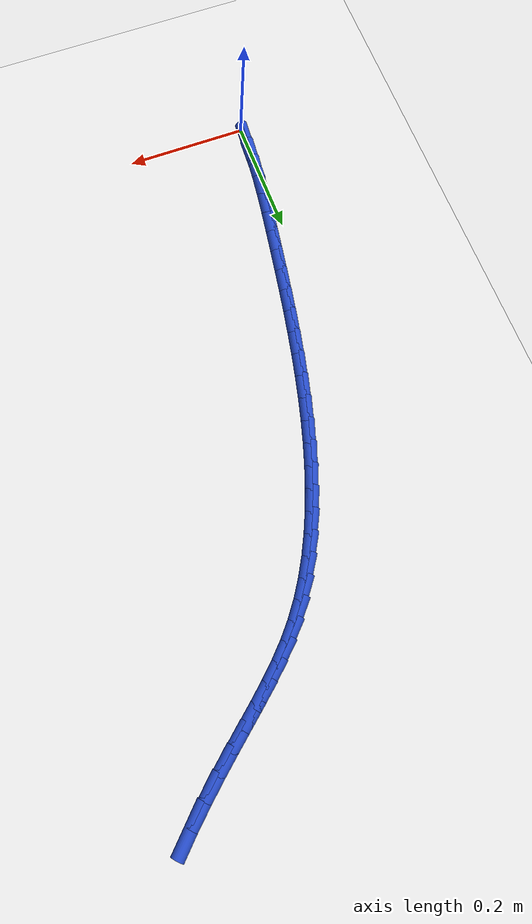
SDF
<sdf version="1.6">
 <world name="default">
  <model name="ground_plane">
   <static>1</static>
   <link name="link">
    <collision name="collision">
     <geometry><plane><normal>0 0 1</normal><size>100 100</size></plane></geometry>
     <surface><friction><ode><mu>100</mu><mu2>50</mu2></ode></friction></surface>
    </collision>
    <visual name="visual">
     <cast_shadows>0</cast_shadows>
     <geometry><plane><normal>0 0 1</normal><size>100 100</size></plane></geometry>
     <material>
      <script><uri>file://media/materials/scripts/gazebo.material</uri><name>Gazebo/WhiteGlow</name></script>
     </material>
    </visual>
   </link>
  </model>
  <model name="line">
   <link name="link_1">
    <pose>0.0010239473156294313 0.03484911852406405 0.01 0 1.57 1.499928040985235</pose>
    <collision name="collision">
     <geometry><cylinder><radius>0.01</radius><length>0.08</length></cylinder></geometry>
    </collision>
    <visual name="visual">
     <material>
      <script><name>Gazebo/Blue</name><uri>file://media/materials/scripts/gazebo.material</uri></script>
     </material>
     <geometry><cylinder><radius>0.01</radius><length>0.08</length></cylinder></geometry>
    </visual>
   </link>
   <link name="link_2">
    <pose>0.0034939503225837085 0.06964418305983518 0.01 0 1.57 1.4656953448621424</pose>
    <collision name="collision">
     <geometry><cylinder><radius>0.01</radius><length>0.08</length></cylinder></geometry>
    </collision>
    <visual name="visual">
     <material>
      <script><name>Gazebo/Blue</name><uri>file://media/materials/scripts/gazebo.material</uri></script>
     </material>
     <geometry><cylinder><radius>0.01</radius><length>0.08</length></cylinder></geometry>
    </visual>
   </link>
   <link name="link_3">
    <pose>0.007170091462013796 0.10449252868664313 0.01 0 1.57 1.4389605207833085</pose>
    <collision name="collision">
     <geometry><cylinder><radius>0.01</radius><length>0.08</length></cylinder></geometry>
    </collision>
    <visual name="visual">
     <material>
      <script><name>Gazebo/Blue</name><uri>file://media/materials/scripts/gazebo.material</uri></script>
     </material>
     <geometry><cylinder><radius>0.01</radius><length>0.08</length></cylinder></geometry>
    </visual>
   </link>
   <link name="link_4">
    <pose>0.011812453175070634 0.13950149048381752 0.01 0 1.57 1.4197688258746766</pose>
    <collision name="collision">
     <geometry><cylinder><radius>0.01</radius><length>0.08</length></cylinder></geometry>
    </collision>
    <visual name="visual">
     <material>
      <script><name>Gazebo/Blue</name><uri>file://media/materials/scripts/gazebo.material</uri></script>
     </material>
     <geometry><cylinder><radius>0.01</radius><length>0.08</length></cylinder></geometry>
    </visual>
   </link>
   <link name="link_5">
    <pose>0.0171811179029052 0.17477840353068816 0.01 0 1.57 1.4080224114338968</pose>
    <collision name="collision">
     <geometry><cylinder><radius>0.01</radius><length>0.08</length></cylinder></geometry>
    </collision>
    <visual name="visual">
     <material>
      <script><name>Gazebo/Blue</name><uri>file://media/materials/scripts/gazebo.material</uri></script>
     </material>
     <geometry><cylinder><radius>0.01</radius><length>0.08</length></cylinder></geometry>
    </visual>
   </link>
   <link name="link_6">
    <pose>0.023036168086668418 0.21043060290658455 0.01 0 1.57 1.4030618206520595</pose>
    <collision name="collision">
     <geometry><cylinder><radius>0.01</radius><length>0.08</length></cylinder></geometry>
    </collision>
    <visual name="visual">
     <material>
      <script><name>Gazebo/Blue</name><uri>file://media/materials/scripts/gazebo.material</uri></script>
     </material>
     <geometry><cylinder><radius>0.01</radius><length>0.08</length></cylinder></geometry>
    </visual>
   </link>
   <link name="link_7">
    <pose>0.02915269633009239 0.2465535088998982 0.01 0 1.57 1.3993205332500802</pose>
    <collision name="collision">
     <geometry><cylinder><radius>0.01</radius><length>0.08</length></cylinder></geometry>
    </collision>
    <visual name="visual">
     <material>
      <script><name>Gazebo/Blue</name><uri>file://media/materials/scripts/gazebo.material</uri></script>
     </material>
     <geometry><cylinder><radius>0.01</radius><length>0.08</length></cylinder></geometry>
    </visual>
   </link>
   <link name="link_8">
    <pose>0.035482133908054964 0.2831025674056935 0.01 0 1.57 1.3933005481091514</pose>
    <collision name="collision">
     <geometry><cylinder><radius>0.01</radius><length>0.08</length></cylinder></geometry>
    </collision>
    <visual name="visual">
     <material>
      <script><name>Gazebo/Blue</name><uri>file://media/materials/scripts/gazebo.material</uri></script>
     </material>
     <geometry><cylinder><radius>0.01</radius><length>0.08</length></cylinder></geometry>
    </visual>
   </link>
   <link name="link_9">
    <pose>0.04209056148565101 0.31994221774210724 0.01 0 1.57 1.384946077841931</pose>
    <collision name="collision">
     <geometry><cylinder><radius>0.01</radius><length>0.08</length></cylinder></geometry>
    </collision>
    <visual name="visual">
     <material>
      <script><name>Gazebo/Blue</name><uri>file://media/materials/scripts/gazebo.material</uri></script>
     </material>
     <geometry><cylinder><radius>0.01</radius><length>0.08</length></cylinder></geometry>
    </visual>
   </link>
   <link name="link_10">
    <pose>0.04904601059406098 0.35693535066566445 0.01 0 1.57 1.3742166747760323</pose>
    <collision name="collision">
     <geometry><cylinder><radius>0.01</radius><length>0.08</length></cylinder></geometry>
    </collision>
    <visual name="visual">
     <material>
      <script><name>Gazebo/Blue</name><uri>file://media/materials/scripts/gazebo.material</uri></script>
     </material>
     <geometry><cylinder><radius>0.01</radius><length>0.08</length></cylinder></geometry>
    </visual>
   </link>
   <link name="link_11">
    <pose>0.05641651276446533 0.39394485693289055 0.01 0 1.57 1.3610290885551308</pose>
    <collision name="collision">
     <geometry><cylinder><radius>0.01</radius><length>0.08</length></cylinder></geometry>
    </collision>
    <visual name="visual">
     <material>
      <script><name>Gazebo/Blue</name><uri>file://media/materials/scripts/gazebo.material</uri></script>
     </material>
     <geometry><cylinder><radius>0.01</radius><length>0.08</length></cylinder></geometry>
    </visual>
   </link>
   <link name="link_12">
    <pose>0.06427009952804444 0.4308336273003101 0.01 0 1.57 1.3452571864948786</pose>
    <collision name="collision">
     <geometry><cylinder><radius>0.01</radius><length>0.08</length></cylinder></geometry>
    </collision>
    <visual name="visual">
     <material>
      <script><name>Gazebo/Blue</name><uri>file://media/materials/scripts/gazebo.material</uri></script>
     </material>
     <geometry><cylinder><radius>0.01</radius><length>0.08</length></cylinder></geometry>
    </visual>
   </link>
   <link name="link_13">
    <pose>0.07267480241597878 0.46746455252444863 0.01 0 1.57 1.326730638230252</pose>
    <collision name="collision">
     <geometry><cylinder><radius>0.01</radius><length>0.08</length></cylinder></geometry>
    </collision>
    <visual name="visual">
     <material>
      <script><name>Gazebo/Blue</name><uri>file://media/materials/scripts/gazebo.material</uri></script>
     </material>
     <geometry><cylinder><radius>0.01</radius><length>0.08</length></cylinder></geometry>
    </visual>
   </link>
   <link name="link_14">
    <pose>0.08169865295944875 0.5037005233618311 0.01 0 1.57 1.305232618522365</pose>
    <collision name="collision">
     <geometry><cylinder><radius>0.01</radius><length>0.08</length></cylinder></geometry>
    </collision>
    <visual name="visual">
     <material>
      <script><name>Gazebo/Blue</name><uri>file://media/materials/scripts/gazebo.material</uri></script>
     </material>
     <geometry><cylinder><radius>0.01</radius><length>0.08</length></cylinder></geometry>
    </visual>
   </link>
   <link name="link_15">
    <pose>0.09140968268963484 0.5394044305689827 0.01 0 1.57 1.280496841751614</pose>
    <collision name="collision">
     <geometry><cylinder><radius>0.01</radius><length>0.08</length></cylinder></geometry>
    </collision>
    <visual name="visual">
     <material>
      <script><name>Gazebo/Blue</name><uri>file://media/materials/scripts/gazebo.material</uri></script>
     </material>
     <geometry><cylinder><radius>0.01</radius><length>0.08</length></cylinder></geometry>
    </visual>
   </link>
   <link name="link_16">
    <pose>0.10187592313771746 0.5744391649024285 0.01 0 1.57 1.2522043899458992</pose>
    <collision name="collision">
     <geometry><cylinder><radius>0.01</radius><length>0.08</length></cylinder></geometry>
    </collision>
    <visual name="visual">
     <material>
      <script><name>Gazebo/Blue</name><uri>file://media/materials/scripts/gazebo.material</uri></script>
     </material>
     <geometry><cylinder><radius>0.01</radius><length>0.08</length></cylinder></geometry>
    </visual>
   </link>
   <link name="link_17">
    <pose>0.11316540583487703 0.6086676171186937 0.01 0 1.57 1.2199810689688901</pose>
    <collision name="collision">
     <geometry><cylinder><radius>0.01</radius><length>0.08</length></cylinder></geometry>
    </collision>
    <visual name="visual">
     <material>
      <script><name>Gazebo/Blue</name><uri>file://media/materials/scripts/gazebo.material</uri></script>
     </material>
     <geometry><cylinder><radius>0.01</radius><length>0.08</length></cylinder></geometry>
    </visual>
   </link>
   <link name="link_18">
    <pose>0.12534616231229395 0.6419526779743031 0.01 0 1.57 1.1833964749011565</pose>
    <collision name="collision">
     <geometry><cylinder><radius>0.01</radius><length>0.08</length></cylinder></geometry>
    </collision>
    <visual name="visual">
     <material>
      <script><name>Gazebo/Blue</name><uri>file://media/materials/scripts/gazebo.material</uri></script>
     </material>
     <geometry><cylinder><radius>0.01</radius><length>0.08</length></cylinder></geometry>
    </visual>
   </link>
   <link name="link_19">
    <pose>0.13848622410114875 0.6741572382257821 0.01 0 1.57 1.1419666333014822</pose>
    <collision name="collision">
     <geometry><cylinder><radius>0.01</radius><length>0.08</length></cylinder></geometry>
    </collision>
    <visual name="visual">
     <material>
      <script><name>Gazebo/Blue</name><uri>file://media/materials/scripts/gazebo.material</uri></script>
     </material>
     <geometry><cylinder><radius>0.01</radius><length>0.08</length></cylinder></geometry>
    </visual>
   </link>
   <link name="link_20">
    <pose>0.15265362273262179 0.7051441886296558 0.01 0 1.57 1.0951630324885584</pose>
    <collision name="collision">
     <geometry><cylinder><radius>0.01</radius><length>0.08</length></cylinder></geometry>
    </collision>
    <visual name="visual">
     <material>
      <script><name>Gazebo/Blue</name><uri>file://media/materials/scripts/gazebo.material</uri></script>
     </material>
     <geometry><cylinder><radius>0.01</radius><length>0.08</length></cylinder></geometry>
    </visual>
   </link>
   <link name="link_21">
    <pose>0.16791638973789355 0.7347764199424494 0.01 0 1.57 1.0424320808337457</pose>
    <collision name="collision">
     <geometry><cylinder><radius>0.01</radius><length>0.08</length></cylinder></geometry>
    </collision>
    <visual name="visual">
     <material>
      <script><name>Gazebo/Blue</name><uri>file://media/materials/scripts/gazebo.material</uri></script>
     </material>
     <geometry><cylinder><radius>0.01</radius><length>0.08</length></cylinder></geometry>
    </visual>
   </link>
   <link name="link_22">
    <pose>0.18434255664814442 0.7629168229206876 0.01 0 1.57 0.983230257297972</pose>
    <collision name="collision">
     <geometry><cylinder><radius>0.01</radius><length>0.08</length></cylinder></geometry>
    </collision>
    <visual name="visual">
     <material>
      <script><name>Gazebo/Blue</name><uri>file://media/materials/scripts/gazebo.material</uri></script>
     </material>
     <geometry><cylinder><radius>0.01</radius><length>0.08</length></cylinder></geometry>
    </visual>
   </link>
   <link name="link_23">
    <pose>0.20200015499455493 0.789428288320896 0.01 0 1.57 0.9170908954530885</pose>
    <collision name="collision">
     <geometry><cylinder><radius>0.01</radius><length>0.08</length></cylinder></geometry>
    </collision>
    <visual name="visual">
     <material>
      <script><name>Gazebo/Blue</name><uri>file://media/materials/scripts/gazebo.material</uri></script>
     </material>
     <geometry><cylinder><radius>0.01</radius><length>0.08</length></cylinder></geometry>
    </visual>
   </link>
   <link name="link_24">
    <pose>0.2209571533859981 0.8141741382692911 0.01 0 1.57 0.8479554641206369</pose>
    <collision name="collision">
     <geometry><cylinder><radius>0.01</radius><length>0.08</length></cylinder></geometry>
    </collision>
    <visual name="visual">
     <material>
      <script><name>Gazebo/Blue</name><uri>file://media/materials/scripts/gazebo.material</uri></script>
     </material>
     <geometry><cylinder><radius>0.01</radius><length>0.08</length></cylinder></geometry>
    </visual>
   </link>
   <link name="link_25">
    <pose>0.24125684260298844 0.8371868760248691 0.01 0 1.57 0.7880293055103469</pose>
    <collision name="collision">
     <geometry><cylinder><radius>0.01</radius><length>0.08</length></cylinder></geometry>
    </collision>
    <visual name="visual">
     <material>
      <script><name>Gazebo/Blue</name><uri>file://media/materials/scripts/gazebo.material</uri></script>
     </material>
     <geometry><cylinder><radius>0.01</radius><length>0.08</length></cylinder></geometry>
    </visual>
   </link>
   <link name="link_26">
    <pose>0.26288043892727603 0.8589245623091757 0.01 0 1.57 0.7414103494423929</pose>
    <collision name="collision">
     <geometry><cylinder><radius>0.01</radius><length>0.08</length></cylinder></geometry>
    </collision>
    <visual name="visual">
     <material>
      <script><name>Gazebo/Blue</name><uri>file://media/materials/scripts/gazebo.material</uri></script>
     </material>
     <geometry><cylinder><radius>0.01</radius><length>0.08</length></cylinder></geometry>
    </visual>
   </link>
   <link name="link_27">
    <pose>0.28579955232514975 0.8799111148271134 0.01 0 1.57 0.7092997654228262</pose>
    <collision name="collision">
     <geometry><cylinder><radius>0.01</radius><length>0.08</length></cylinder></geometry>
    </collision>
    <visual name="visual">
     <material>
      <script><name>Gazebo/Blue</name><uri>file://media/materials/scripts/gazebo.material</uri></script>
     </material>
     <geometry><cylinder><radius>0.01</radius><length>0.08</length></cylinder></geometry>
    </visual>
   </link>
   <link name="link_28">
    <pose>0.30998579276289895 0.9006704512835848 0.01 0 1.57 0.6916794545246121</pose>
    <collision name="collision">
     <geometry><cylinder><radius>0.01</radius><length>0.08</length></cylinder></geometry>
    </collision>
    <visual name="visual">
     <material>
      <script><name>Gazebo/Blue</name><uri>file://media/materials/scripts/gazebo.material</uri></script>
     </material>
     <geometry><cylinder><radius>0.01</radius><length>0.08</length></cylinder></geometry>
    </visual>
   </link>
   <link name="link_29">
    <pose>0.3354107702068125 0.9217264893834933 0.01 0 1.57 0.6876183692868023</pose>
    <collision name="collision">
     <geometry><cylinder><radius>0.01</radius><length>0.08</length></cylinder></geometry>
    </collision>
    <visual name="visual">
     <material>
      <script><name>Gazebo/Blue</name><uri>file://media/materials/scripts/gazebo.material</uri></script>
     </material>
     <geometry><cylinder><radius>0.01</radius><length>0.08</length></cylinder></geometry>
    </visual>
   </link>
   <link name="link_30">
    <pose>0.3620460946231796 0.9436031468317415 0.01 0 1.57 0.6955889898252542</pose>
    <collision name="collision">
     <geometry><cylinder><radius>0.01</radius><length>0.08</length></cylinder></geometry>
    </collision>
    <visual name="visual">
     <material>
      <script><name>Gazebo/Blue</name><uri>file://media/materials/scripts/gazebo.material</uri></script>
     </material>
     <geometry><cylinder><radius>0.01</radius><length>0.08</length></cylinder></geometry>
    </visual>
   </link>
   <link name="link_31">
    <pose>0.38986337597828924 0.9668243413332324 0.01 0 1.57 0.7137275091206661</pose>
    <collision name="collision">
     <geometry><cylinder><radius>0.01</radius><length>0.08</length></cylinder></geometry>
    </collision>
    <visual name="visual">
     <material>
      <script><name>Gazebo/Blue</name><uri>file://media/materials/scripts/gazebo.material</uri></script>
     </material>
     <geometry><cylinder><radius>0.01</radius><length>0.08</length></cylinder></geometry>
    </visual>
   </link>
   <link name="link_32">
    <pose>0.41883422423843053 0.9919139905928684 0.01 0 1.57 0.7400300089661886</pose>
    <collision name="collision">
     <geometry><cylinder><radius>0.01</radius><length>0.08</length></cylinder></geometry>
    </collision>
    <visual name="visual">
     <material>
      <script><name>Gazebo/Blue</name><uri>file://media/materials/scripts/gazebo.material</uri></script>
     </material>
     <geometry><cylinder><radius>0.01</radius><length>0.08</length></cylinder></geometry>
    </visual>
   </link>
   <link name="link_33">
    <pose>0.4489302493698926 1.019396012315553 0.01 0 1.57 0.7724992915316626</pose>
    <collision name="collision">
     <geometry><cylinder><radius>0.01</radius><length>0.08</length></cylinder></geometry>
    </collision>
    <visual name="visual">
     <material>
      <script><name>Gazebo/Blue</name><uri>file://media/materials/scripts/gazebo.material</uri></script>
     </material>
     <geometry><cylinder><radius>0.01</radius><length>0.08</length></cylinder></geometry>
    </visual>
   </link>
   <link name="link_281">
    <pose>0.0010929131517074748 0.034823647679301364 0.01 0 1.57 1.4857036454641723</pose>
    <collision name="collision">
     <geometry><cylinder><radius>0.01</radius><length>0.08</length></cylinder></geometry>
    </collision>
    <visual name="visual">
     <material>
      <script><name>Gazebo/Blue</name><uri>file://media/materials/scripts/gazebo.material</uri></script>
     </material>
     <geometry><cylinder><radius>0.01</radius><length>0.08</length></cylinder></geometry>
    </visual>
   </link>
   <link name="link_282">
    <pose>0.004045677011208023 0.06944041630173525 0.01 0 1.57 1.5126009841835515</pose>
    <collision name="collision">
     <geometry><cylinder><radius>0.01</radius><length>0.08</length></cylinder></geometry>
    </collision>
    <visual name="visual">
     <material>
      <script><name>Gazebo/Blue</name><uri>file://media/materials/scripts/gazebo.material</uri></script>
     </material>
     <geometry><cylinder><radius>0.01</radius><length>0.08</length></cylinder></geometry>
    </visual>
   </link>
  </model>
 </world>
</sdf>
